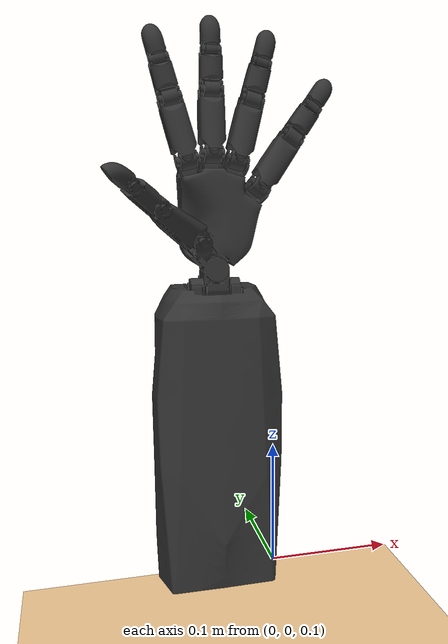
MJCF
<mujoco model="DPHand">
    <compiler angle="radian" autolimits="true"/>
    <option cone="elliptic" impratio="10"/>

   <!-- 备注  需要进一步修改 Kp 控制增益参数（刚度），solimp  软约束冲量 控制碰撞的恢复性和软硬度， solref 约束参考参数（soft constraint reference），决定接触刚度和时间尺度   -->
   <!-- 备注  需要进一步修改  frictionloss 静摩擦损失（Coulomb friction loss）  damping  粘滞阻尼 armature 转动惯量（armature inertia），模拟电机或关节的内部惯性 -->

    <default>
        <default class="plastic">
            <geom solimp="0.5 0.99 0.0001" solref="0.005 1" type="mesh" material="black"/>
        </default>
        <default class="jointconfig">
            <joint axis="1 0 0" damping="0.05" armature="0.0002" frictionloss="0.05"/>
        </default>

        <default class="DIPCtrl">
          <joint  range="0 1.22173"/>
          <position kp="0.4" ctrlrange="0 1.22173" forcerange="-0.66818 0.66818"/>
        </default>

        <default class="PIPCtrl">
          <joint  range="0 1.919862"/>
          <position kp="0.6" ctrlrange="0 1.919862" forcerange="-2.063 2.063"/>
        </default>

        <default class="MCPCtrl">
          <joint  range="-0.523599 1.570796"/>
          <position kp="0.8" ctrlrange="-0.523599 1.570796" forcerange="-4.83 4.83"/>
        </default>

        <default class="MCP2Ctrl">
          <joint  range="-0.610865 0.610865"/>
          <position kp="0.5" ctrlrange="-0.610865 0.610865" forcerange="-2.45 2.45"/>
        </default>

    </default>

    <asset>
        <material name="black" specular="0.5" shininess="0.25" rgba="0.2 0.2 0.2 1"  />
        <material name="gray" specular="0.0" shininess="0.5" rgba="0.80848 0.80848 0.80848 1"/>

        <mesh name="Wrist" file="meshes_obj/Wrist.obj" scale="0.001 0.001 0.001" />
        <mesh name="Palm" file="meshes_obj/Palm.obj" scale="0.001 0.001 0.001" />
        <mesh name="Thumb-MCP" file="meshes_obj/MCP.obj" scale="0.001 0.001 0.001" />
        <mesh name="Thumb-PP" file="meshes_obj/PP.obj" scale="0.001 0.001 0.001" />
        <mesh name="Thumb-PM" file="meshes_obj/PM.obj" scale="0.001 0.001 0.001" />
        <mesh name="Thumb-PD" file="meshes_obj/PD.obj" scale="0.001 0.001 0.001" />
        <mesh name="Index-PP" file="meshes_obj/PP.obj" scale="0.001 0.001 0.001" />
        <mesh name="Index-PM" file="meshes_obj/PM.obj" scale="0.001 0.001 0.001" />
        <mesh name="Index-PD" file="meshes_obj/PD.obj" scale="0.001 0.001 0.001" />
        <mesh name="Middle-PD" file="meshes_obj/PD.obj" scale="0.001 0.001 0.001" />
        <mesh name="Middle-PM" file="meshes_obj/PM.obj" scale="0.001 0.001 0.001" />
        <mesh name="Middle-PP" file="meshes_obj/PP.obj" scale="0.001 0.001 0.001" />
        <mesh name="Middle-MCP" file="meshes_obj/MCP.obj" scale="0.001 0.001 0.001" />
        <mesh name="Ring-MCP" file="meshes_obj/MCP.obj" scale="0.001 0.001 0.001" />
        <mesh name="Ring-PP" file="meshes_obj/PP.obj" scale="0.001 0.001 0.001" />
        <mesh name="Ring-PM" file="meshes_obj/PM.obj" scale="0.001 0.001 0.001" />
        <mesh name="Ring-PD" file="meshes_obj/PD.obj" scale="0.001 0.001 0.001" />
        <mesh name="Little-PD" file="meshes_obj/PD.obj" scale="0.001 0.001 0.001" />
        <mesh name="Little-PM" file="meshes_obj/PM.obj" scale="0.001 0.001 0.001" />
        <mesh name="Little-PP" file="meshes_obj/PP.obj" scale="0.001 0.001 0.001" />
        <mesh name="Little-MCP" file="meshes_obj/MCP.obj" scale="0.001 0.001 0.001" />
        <mesh name="Index-MCP" file="meshes_obj/MCP.obj" scale="0.001 0.001 0.001" />
        <mesh name="Forearm" file="meshes_obj/Forearm.obj" scale="0.001 0.001 0.001" />
    </asset>

    <worldbody>
        <light directional="false" pos="0.5 0.5 3" />
        <geom pos="0 0 0" size="1 1 1" type="plane" rgba="1 0.83 0.61 0.5" />

        <body name="Forearm" pos="-0.045086023862298534 0.009442175115213601 0.19412982797572212" euler="-1.5707963267948963 4.383594686699829e-16 3.1415926535897922">
            <geom class="plastic" name="Forearm_geom" type="mesh" mesh="Forearm" pos="0 0 0" euler="0 0 0"/>
            <inertial mass="1.9453304463125118" pos="-2.6615378024531148e-08 0.009019289013986305 0.0032088635623812897" fullinertia="0.009066690743886285 0.002094541290341062 0.00960327727265748 -6.786222020669816e-09 -1.1843581789473546e-09 8.685478979449512e-05" />

            <body name="Wrist" pos="-5.329070518200751e-17 0.13654999999999984 -1.7763568394002505e-17" euler="-3.141592653589793 7.41212194690677e-32 -3.141592653589793">
                <joint  class="jointconfig" name="Forearm_Wrist-Flexion" type="hinge" axis="0.9999999999999922 -8.887205207863613e-16 -4.3835946866997966e-16" pos="0.020000023862298447 1.7202427902594974e-07 1.7511521353289145e-07" range="-1.047198 1.047198" damping="0.1 "/>
                <geom class="plastic" name="Wrist_geom" type="mesh" mesh="Wrist" pos="0 0 0" euler="0 0 0"/>
                <inertial mass="0.02656214079320285" pos="-1.69243593868272e-07 0.0016472458767444085 -1.6800554081391377e-06" fullinertia="2.0813142204422996e-06 4.359133919833236e-06 3.936873235039729e-06 -4.4040114384845307e-11 -1.131996854421492e-08 -5.300701354629199e-10" />

                <body name="Palm" pos="0.01129099357241001 0.07971340504264361 0.043586459565069006" euler="3.141592653589793 -5.645033986231014e-06 -3.141592653589793">
                    <joint  class="jointconfig" name="Wrist_Wrist-Abduction" type="hinge" axis="5.645033985756887e-06 3.1918911957973315e-16 -0.9999999999840592" pos="0.011290782654479357 -0.06471323301836342 0.033136348187234654" range="-0.872665 0.523599" damping="0.1"/>
                    <geom class="plastic" name="Palm_geom" type="mesh" mesh="Palm" pos="0 0 0" euler="0 0 0"/>
                    <inertial mass="0.2602111705177352" pos="0.008366751647868122 -0.02196163963553714 0.050750200275004716" fullinertia="0.00016809656398654498 9.383212552094538e-05 0.0002082113956576322 3.3379116774949452e-06 -8.329607410925668e-07 -6.439751497203951e-06" />

                    <body name="Thumb-MCP" pos="0.06646453612762752 -0.006132543067662581 0.23216861852976048" euler="0.8433678826770468 -0.7227359898922351 1.0799202183467054">
                        <joint  class="jointconfig" name="Palm_Thumb-MCP-Flexion" type="hinge" axis="0.9999993741212565 -1.9773373993725585e-08 2.7577507161202774e-07" pos="-0.19100048404368228 0.008500111311707255 -0.05328147048432252" range="-0.523599 1.570796" damping="0.1"/>
                        <geom class="plastic" name="Thumb-MCP_geom" type="mesh" mesh="Thumb-MCP" pos="0 0 0" euler="0 0 0"/>
                        <inertial mass="0.005036994326199342" pos="-0.20000003939517735 0.00771726400998568 -0.05238245453895492" fullinertia="1.2970868632662727e-07 1.6007173878014266e-07 1.5900576781080497e-07 1.9696295556984942e-13 -5.666079262914197e-13 -1.4577138745808807e-08" />

                        <body name="Thumb-PP" pos="-0.1999099137026213 -8.975787161681125e-05 -0.09186663199430434" euler="1.5707964398014924 -4.440892098500623e-16 -3.1415926535897927">
                            <joint  class="jointconfig" name="Thumb-MCP_Thumb-MCP-Abduction" type="hinge" axis="1.2682376226980097e-07 -0.4999997811126733 0.8660249336764163" pos="9.00146861002862e-05 -0.03683519983393464 -0.011620692906578887" range="-0.610865 0.610865" damping="0.1"/>
                            <geom class="plastic" name="Thumb-PP_geom" type="mesh" mesh="Thumb-PP" pos="0 0 0" euler="0 0 0"/>
                            <inertial mass="0.03708856624254697" pos="9.030301616385424e-05 -0.014531198977560479 -0.005880351460123734" fullinertia="5.753639912619248e-06 2.3941975919820493e-06 5.462290746232934e-06 -1.8478345177537705e-10 -9.173268363720042e-11 -6.425808363890366e-07" />

                            <body name="Thumb-PM" pos="9.00862973793437e-05 0.0006333688633876378 -8.975695249269222e-05" euler="1.570796326794897 -3.885780586188048e-16 -3.1415926535897922">
                                <joint  class="jointconfig" name="Thumb-PP_Thumb-PIP-Flexion" type="hinge" axis="0.9999993741212565 -1.9773343240547803e-08 2.757750738047182e-07" pos="0.009000053397670283 0.007500012297346963 -0.007499959122900093" range="0 1.919862" damping="0.1"/>
                                <geom class="plastic" name="Thumb-PM_geom" type="mesh" mesh="Thumb-PM" pos="0 0 0" euler="0 0 0" />
                                <inertial mass="0.020227223379927373" pos="-1.848580694421842e-07 0.005195827579475683 -0.0187189494907972" fullinertia="1.9967071755990337e-06 2.0011051517931557e-06 8.144475144013871e-07 -8.221468741961615e-12 3.2138099137484784e-12 -1.7160624501976697e-07" />

                                <body name="Thumb-PD" pos="2.0428103653102883e-15 0.006000000000000014 -0.030374007257449022" euler="-0.0 -5.30131494258512e-15 1.6653345369377338e-16">
                                    <joint  class="jointconfig" name="Thumb-PM_Thumb-DIP-Flexion" type="hinge" axis="0.9999993741212571 -1.9773343351570105e-08 2.7577506855891443e-07" pos="0.007500185506918168 -1.0135717486668694e-08 -0.005999648442277302" range="0 1.22173" damping="0.1"/>
                                    <geom class="plastic" name="Thumb-PD_geom" type="mesh" mesh="Thumb-PD" pos="0 0 0" euler="0 0 0" />
                                    <inertial mass="0.008221233655296712" pos="4.78256383562841e-06 -0.001059520123761583 -0.014235123790328312" fullinertia="5.898243383359009e-07 6.159934754370924e-07 2.2995080143593457e-07 -4.951643830232875e-11 -3.519078467407562e-10 -5.015937733979458e-08" />

                                </body>
                            </body>
                        </body>
                    </body>

                    <body name="Index-MCP" pos="-0.17611858726643287 0.01860627582114212 0.0520866274849916" euler="1.5707752592412532 -0.2617993878586258 -3.141592653589793">
                        <joint  class="jointconfig" name="Palm_Index-MCP-Flexion" type="hinge" axis="1.0000001561184753 1.9302374834874957e-12 8.852540064885339e-08" pos="-0.1910001700693438 0.00850017511903284 -0.05328168114121647" range="-0.523599 1.570796" damping="0.1"/>
                        <geom class="plastic" name="Index-MCP_geom" type="mesh" mesh="Index-MCP" pos="0 0 0" euler="0 0 0" />
                        <inertial mass="0.005036994326199342" pos="-0.20000003939517752 0.007717264009985939 -0.052382454538954695" fullinertia="1.297086863268387e-07 1.6007173878164116e-07 1.5900576781229262e-07 1.9696271334408768e-13 -5.666087175359978e-13 -1.4577138745714998e-08" />

                        <body name="Index-PP" pos="-0.19990991370262104 -8.975787161696003e-05 -0.09186663199430434" euler="1.5707964398014924 -6.468858380816871e-16 -3.141592653589793">
                            <joint  class="jointconfig" name="Index-MCP_Index-MCP-Abduction" type="hinge" axis="-2.6781389336760775e-07 -0.5000005133392491 0.8660250383253366" pos="8.999934378633653e-05 -0.03683495104841343 -0.011620898985207259" range="-0.610865 0.610865" damping="0.1" />
                            <geom class="plastic" name="Index-PP_geom" type="mesh" mesh="Index-PP" pos="0 0 0" euler="0 0 0"/>
                            <inertial mass="0.03708856624254697" pos="9.030301616390303e-05 -0.014531198977560611 -0.005880351460123762" fullinertia="5.753639912618303e-06 2.3941975919821154e-06 5.4622907462326845e-06 -1.8478345217030616e-10 -9.17326836966934e-11 -6.425808363889253e-07" />

                            <body name="Index-PM" pos="9.008629737936147e-05 0.0006333688633875312 -8.97569524926678e-05" euler="1.5707963267948966 1.1102230246251568e-16 -3.1415926535897927">
                                <joint  class="jointconfig" name="Index-PP_Index-PIP-Flexion" type="hinge" axis="1.0000001561184766 1.9402182929335594e-12 8.852540045456436e-08" pos="0.009000288994289127 0.007500156170805646 -0.007499409252653209" range="0 1.919862" damping="0.1" />
                                <geom class="plastic" name="Index-PM_geom" type="mesh" mesh="Index-PM" pos="0 0 0" euler="0 0 0" />
                                <inertial mass="0.020227223379927373" pos="-1.848580693832036e-07 0.005195827579475731 -0.01871894949079733" fullinertia="1.9967071755979597e-06 2.0011051517931565e-06 8.144475144015177e-07 -8.221468830239125e-12 3.2138093862587105e-12 -1.716062450195863e-07" />

                                 <body name="Index-PD" pos="1.838529328779259e-15 0.005999999999999879 -0.030374007257448526" euler="4.1619810896287264e-17 -5.8009153036664374e-15 5.659365933784879e-17">
                                    <joint  class="jointconfig" name="Index-PM_Index-DIP-Flexion" type="hinge" axis="1.000000156118477 1.9401617001212545e-12 8.852539465364906e-08" pos="0.007500340150546129 -4.768566481272736e-07 -0.005999444697657891" range="0 1.22173" damping="0.1" />
                                    <geom class="plastic" name="Index-PD_geom" type="mesh" mesh="Index-PD" pos="0 0 0" euler="0 0 0" />
                                    <inertial mass="0.008221233655296712" pos="4.782563835702136e-06 -0.0010595201237615741 -0.014235123790328466" fullinertia="5.898243383354302e-07 6.159934754366981e-07 2.2995080143603772e-07 -4.951643833947085e-11 -3.519078468321299e-10 -5.0159377339789395e-08" />
                                 </body>
                            </body>
                        </body>
                    </body>

                    <body name="Middle-MCP" pos="-0.18870930045441625 -0.029730502816816086 0.052085394207460056" euler="1.5707963284469457 -1.915701280528547e-18 -3.141587008555807">
                        <joint  class="jointconfig" name="Palm_Middle-MCP-Flexion" type="hinge" axis="0.9999999999999927 -5.144259135054388e-16 1.0216509586550925e-14" pos="-0.190999976137697 0.00850017511521407 -0.053282269784410745" range="-0.523599 1.570796" damping="0.1"/>
                        <geom class="plastic" name="Middle-MCP_geom" type="mesh" mesh="Middle-MCP" pos="0 0 0" euler="0 0 0"/>
                        <inertial mass="0.005036994326199342" pos="-0.20000003939517802 0.00771726400998593 -0.052382454538954855" fullinertia="1.2970868632693096e-07 1.6007173878119713e-07 1.590057678117707e-07 1.9696273647388832e-13 -5.66608568171624e-13 -1.4577138745737425e-08" />

                        <body name="Middle-PP" pos="-0.1999099137026208 -8.97578716168801e-05 -0.09186663199430463" euler="1.5707964398014933 -1.6303776237407785e-15 3.141592653589792">
                            <joint  class="jointconfig" name="Middle-MCP_Middle-MCP-Abduction" type="hinge" axis="2.108308406328883e-15 -0.5000000964358128 0.8660249443227128" pos="9.006243507892484e-05 -0.03683436090165744 -0.011620937152247808"  range="-0.610865 0.610865" damping="0.1"  />
                            <geom class="plastic" name="Middle-PP_geom" type="mesh" mesh="Middle-PP" pos="0 0 0" euler="0 0 0" />
                            <inertial mass="0.03708856624254697" pos="9.030301616385639e-05 -0.014531198977560526 -0.005880351460123758" fullinertia="5.753639912620901e-06 2.3941975919821687e-06 5.4622907462329505e-06 -1.8478345192100178e-10 -9.173268371915364e-11 -6.425808363889447e-07" />

                             <body name="Middle-PM" pos="9.008629737941476e-05 0.0006333688633878154 -8.975695249255233e-05" euler="1.570796326794896 3.5060138694304263e-15 3.141592653589793">
                                <joint  class="jointconfig" name="Middle-PP_Middle-PIP-Flexion" type="hinge" axis="0.9999999999999915 1.2523998844324682e-15 8.290647917111368e-15" pos="0.009000023862300784 0.007500175192364041 -0.00750026978608391" range="0 1.919862" damping="0.1"  />
                                <geom class="plastic" name="Middle-PM_geom" type="mesh" mesh="Middle-PM" pos="0 0 0" euler="0 0 0" />
                                <inertial mass="0.020227223379927373" pos="-1.848580693926345e-07 0.005195827579475707 -0.018718949490797342" fullinertia="1.9967071755999316e-06 2.001105151793533e-06 8.14447514401632e-07 -8.221468839957543e-12 3.2138097021157473e-12 -1.716062450195371e-07" />

                                 <body name="Middle-PD" pos="1.936228954946273e-15 0.00599999999999997 -0.03037400725744824" euler="-1.5265541442305315e-16 -5.723529200691246e-15 2.7755575612648e-17">
                                    <joint  class="jointconfig" name="Middle-PM_Middle-DIP-Flexion" type="hinge" axis="0.9999999999999903 1.224644308819821e-15 2.567118716420166e-15" pos="0.007500023862299049 1.719771129834434e-07 -0.0060002623616039015" range="0 1.22173" damping="0.1"  />
                                    <geom class="plastic" name="Middle-PD_geom" type="mesh" mesh="Middle-PD" pos="0 0 0" euler="0 0 0" />
                                    <inertial mass="0.008221233655296712" pos="4.782563835693732e-06 -0.0010595201237615774 -0.014235123790328407" fullinertia="5.8982433833592e-07 6.159934754369468e-07 2.2995080143610427e-07 -4.9516438339518763e-11 -3.5190784665454645e-10 -5.0159377339798586e-08" />
                                 </body>
                            </body>
                        </body>
                    </body>
                    <body name="Ring-MCP" pos="-0.18767024819266495 -0.08492170036827837 0.05208423804242273" euler="1.57081739434854 0.26179938785860357 -3.141592653589793">
                        <joint  class="jointconfig" name="Palm_Ring-MCP-Flexion" type="hinge" axis="1.0000001561184764 1.93040574150027e-12 -8.852537683456951e-08" pos="-0.19100035948522942 0.008500175102491786 -0.05328127297908482" range="-0.523599 1.570796" damping="0.1"/>
                        <geom class="plastic" name="Ring-MCP_geom" type="mesh" mesh="Ring-MCP" pos="0 0 0" euler="0 0 0"/>
                        <inertial mass="0.005036994326199342" pos="-0.2000000393951779 0.007717264009985978 -0.05238245453895469" fullinertia="1.297086863270078e-07 1.6007173878149897e-07 1.590057678118756e-07 1.9696270663761313e-13 -5.666087329612618e-13 -1.4577138745797626e-08" />

                        <body name="Ring-PP" pos="-0.19990991370262098 -8.975787161693339e-05 -0.09186663199430477" euler="1.5707964398014922 -1.4657405402796817e-15 3.141592653589792">
                            <joint  class="jointconfig" name="Ring-MCP_Ring-MCP-Abduction" type="hinge" axis="-3.563392845240543e-07 -0.49999983875427456 0.8660248490652869" pos="9.012715254536063e-05 -0.03683507092069301 -0.011620975312479305"  range="-0.610865 0.610865" damping="0.1" />
                            <geom class="plastic" name="Ring-PP_geom" type="mesh" mesh="Ring-PP" pos="0 0 0" euler="0 0 0" />
                            <inertial mass="0.03708856624254697" pos="9.030301616386573e-05 -0.0145311989775605 -0.0058803514601237505" fullinertia="5.7536399126189585e-06 2.394197591982186e-06 5.4622907462321746e-06 -1.8478345194986583e-10 -9.173268371364452e-11 -6.425808363889471e-07" />

                            <body name="Ring-PM" pos="9.008629737945029e-05 0.0006333688633875312 -8.975695249265225e-05" euler="1.5707963267948961 2.9420910152566558e-15 3.141592653589793">
                                <joint  class="jointconfig" name="Ring-PP_Ring-PIP-Flexion" type="hinge" axis="1.0000001561184748 1.9219578033436878e-12 -8.852537849990405e-08" pos="0.00899988855791442 0.007500194077943506 -0.007500269456869411"  range="0 1.919862" damping="0.1" />
                                <geom class="plastic" name="Ring-PM_geom" type="mesh" mesh="Ring-PM" pos="0 0 0" euler="0 0 0" />
                                <inertial mass="0.020227223379927373" pos="-1.848580693918772e-07 0.0051958275794757175 -0.018718949490797335" fullinertia="1.9967071755994534e-06 2.0011051517932522e-06 8.144475144016588e-07 -8.221468843985106e-12 3.2138096393098035e-12 -1.716062450195736e-07" />

                                <body name="Ring-PD" pos="2.113864638886298e-15 0.005999999999999881 -0.030374007257448384" euler="-1.6658427567060916e-16 -5.828670879282087e-15 -1.1912163150416135e-16">
                                    <joint  class="jointconfig" name="Ring-PM_Ring-DIP-Flexion" type="hinge" axis="1.0000001561184741 1.922076924128159e-12 -8.852538432857493e-08" pos="0.0074997407780687895 -1.7943064091345823e-07 -0.005999871204416982"  range="0 1.22173" damping="0.1"  />
                                    <geom class="plastic" name="Ring-PD_geom" type="mesh" mesh="Ring-PD" pos="0 0 0" euler="0 0 0" />
                                    <inertial mass="0.008221233655296712" pos="4.782563835709075e-06 -0.0010595201237615654 -0.014235123790328317" fullinertia="5.898243383363355e-07 6.159934754374612e-07 2.299508014361174e-07 -4.951643834537826e-11 -3.5190784669062244e-10 -5.015937733981168e-08" />

                                </body>
                            </body>
                        </body>
                    </body>
                    <body name="Little-MCP" pos="-0.15875085210786632 -0.16055826110610188 0.05208503902128425" euler="1.5708043887389316 0.610865238220759 3.1415926535897927">
                        <joint  class="jointconfig" name="Palm_Little-MCP-Flexion" type="hinge" axis="0.9999997134398921 3.2678340827589636e-12 -3.320347174984306e-07" pos="-0.1909997506940443 0.008500175115955124 -0.05328193162573373" range="-0.523599 1.570796" damping="0.1"/>
                        <geom class="plastic" name="Little-MCP_geom" type="mesh" mesh="Little-MCP" pos="0 0 0" euler="0 0 0"/>
                        <inertial mass="0.005036994326199342" pos="-0.20000003939517627 0.007717264009985934 -0.052382454538954584" fullinertia="1.2970868632661083e-07 1.6007173878179342e-07 1.5900576781231374e-07 1.9696272214941319e-13 -5.666084463200185e-13 -1.4577138745881507e-08" />

                        <body name="Little-PP" pos="-0.1999099137026218 -8.975787161693339e-05 -0.09186663199430449" euler="1.5707964398014929 -1.5032014194049508e-15 3.1415926535897922">
                            <joint  class="jointconfig" name="Little-MCP_Little-MCP-Abduction" type="hinge" axis="-8.52921952787522e-08 -0.500000033298895 0.8660248644462071" pos="9.032653567493665e-05 -0.03683471032494446 -0.011620954373351812"  range="-0.610865 0.610865" damping="0.1" />
                            <geom class="plastic" name="Little-PP_geom" type="mesh" mesh="Little-PP" pos="0 0 0" euler="0 0 0" />
                            <inertial mass="0.03708856624254697" pos="9.030301616387224e-05 -0.014531198977560398 -0.005880351460123711" fullinertia="5.7536399126192465e-06 2.3941975919822128e-06 5.462290746232142e-06 -1.8478345201614616e-10 -9.17326837131716e-11 -6.42580836388941e-07" />

                            <body name="Little-PM" pos="9.008629737948581e-05 0.0006333688633876734 -8.975695249266335e-05" euler="1.5707963267948961 3.108624468950432e-15 3.141592653589793">
                                <joint  class="jointconfig" name="Little-PP_Little-PIP-Flexion" type="hinge" axis="0.9999997134398901 3.232061225948125e-12 -3.3203471960785436e-07" pos="0.00900005084200259 0.007499634902912834 -0.007499625246447951" range="0 1.919862" damping="0.1"  />
                                <geom class="plastic" name="Little-PM_geom" type="mesh" mesh="Little-PM" pos="0 0 0" euler="0 0 0" />
                                <inertial mass="0.020227223379927373" pos="-1.8485806939708138e-07 0.005195827579475688 -0.01871894949079721" fullinertia="1.9967071755988914e-06 2.0011051517922976e-06 8.144475144015422e-07 -8.221468839812521e-12 3.2138098415389197e-12 -1.7160624501956656e-07" />

                                <body name="Little-PD" pos="1.8474111129762605e-15 0.005999999999999897 -0.030374007257449237" euler="4.161981089628736e-17 -5.995204332975853e-15 6.189413741188206e-16">
                                    <joint  class="jointconfig" name="Little-PM_Little-DIP-Flexion" type="hinge" axis="0.9999997134398901 3.23144228287994e-12 -3.320347256030587e-07" pos="0.007500029952810935 -8.418228709658533e-08 -0.006000154141074002" range="0 1.22173" damping="0.1" />
                                    <geom class="plastic" name="Little-PD_geom" type="mesh" mesh="Little-PD" pos="0 0 0" euler="0 0 0" />
                                    <inertial mass="0.008221233655296712" pos="4.78256383570734e-06 -0.001059520123761557 -0.014235123790328267" fullinertia="5.898243383361532e-07 6.159934754376649e-07 2.2995080143613193e-07 -4.951643834013244e-11 -3.519078466670908e-10 -5.015937733978922e-08" />

                                </body>
                            </body>
                        </body>
                    </body>
                </body>
            </body>
        </body>
    </worldbody>

    <contact>
        <exclude name="Wrist_Forearm-exclude" body1="Wrist" body2="Forearm"/>
        <exclude name="Palm_Forearm-exclude" body1="Palm" body2="Forearm"/>

        <exclude name="Thumb-PP-exclude" body1="Thumb-PP" body2="Palm"/>
        <exclude name="Index-PP-exclude" body1="Index-PP" body2="Palm"/>
        <exclude name="Middle-PP-exclude" body1="Middle-PP" body2="Palm"/>
        <exclude name="Ring-PP-exclude" body1="Ring-PP" body2="Palm"/>
        <exclude name="Little-PP-exclude" body1="Little-PP" body2="Palm"/>
    </contact>

    <actuator>
        <position class="DIPCtrl"  name="Thumb-PD" joint="Thumb-PM_Thumb-DIP-Flexion"  />
        <position class="PIPCtrl"  name="Thumb-PM" joint="Thumb-PP_Thumb-PIP-Flexion"  />
        <position class="MCPCtrl"  name="Thumb-MCP" joint="Palm_Thumb-MCP-Flexion"  />
        <position class="MCP2Ctrl"  name="Thumb-PP" joint="Thumb-MCP_Thumb-MCP-Abduction"  />

        <position class="DIPCtrl" name="Index-PD" joint="Index-PM_Index-DIP-Flexion" />
        <position class="PIPCtrl"  name="Index-PM" joint="Index-PP_Index-PIP-Flexion" />
        <position class="MCPCtrl"  name="Index-MCP" joint="Palm_Index-MCP-Flexion" />
        <position class="MCP2Ctrl" name="Index-PP" joint="Index-MCP_Index-MCP-Abduction"  />

        <position class="DIPCtrl" name="Middle-PD" joint="Middle-PM_Middle-DIP-Flexion"/>
        <position class="PIPCtrl"  name="Middle-PM" joint="Middle-PP_Middle-PIP-Flexion" />
        <position class="MCPCtrl"  name="Middle-MCP" joint="Palm_Middle-MCP-Flexion"  />
        <position class="MCP2Ctrl" name="Middle-PP" joint="Middle-MCP_Middle-MCP-Abduction" />

        <position class="DIPCtrl" name="Ring-PD" joint="Ring-PM_Ring-DIP-Flexion" />
        <position class="PIPCtrl"  name="Ring-PM" joint="Ring-PP_Ring-PIP-Flexion" />
        <position class="MCPCtrl"  name="Ring-MCP" joint="Palm_Ring-MCP-Flexion"  />
        <position class="MCP2Ctrl"  name="Ring-PP" joint="Ring-MCP_Ring-MCP-Abduction" />

        <position class="DIPCtrl" name="Little-PD" joint="Little-PM_Little-DIP-Flexion" />
        <position class="PIPCtrl"  name="Little-PM" joint="Little-PP_Little-PIP-Flexion" />
        <position class="MCPCtrl"  name="Little-MCP" joint="Palm_Little-MCP-Flexion" />
        <position class="MCP2Ctrl" name="Little-PP" joint="Little-MCP_Little-MCP-Abduction"/>

        <position name="Wrist" joint="Forearm_Wrist-Flexion" ctrlrange="-1.047198 1.047198" kp="5" forcerange="-20 20" />
        <position name="Palm" joint="Wrist_Wrist-Abduction" ctrlrange="-0.523598776 0.523598776" kp="5" forcerange="-10 10" />

    </actuator>
</mujoco>
